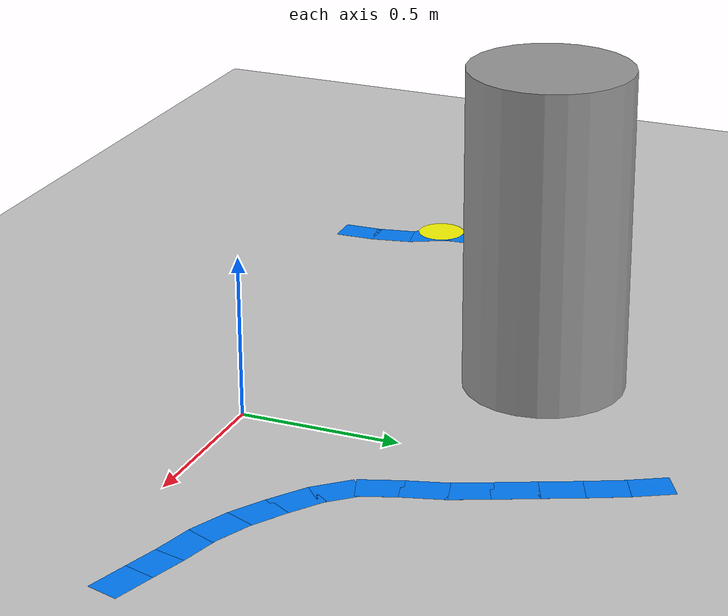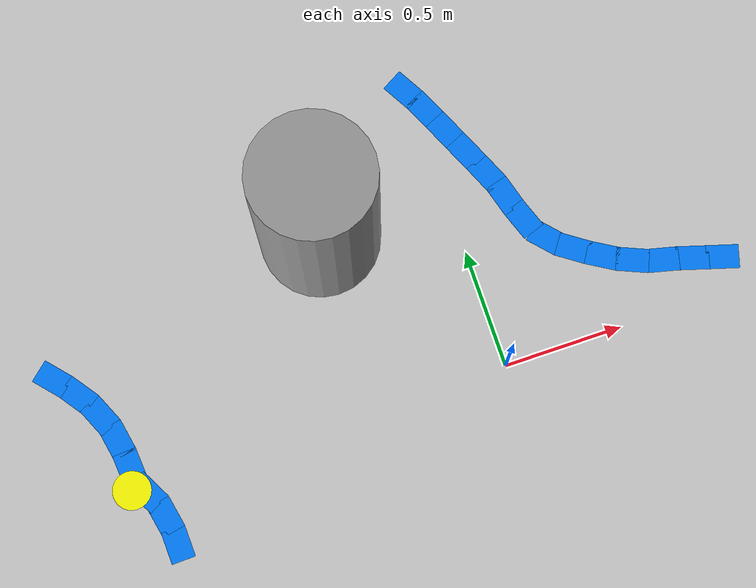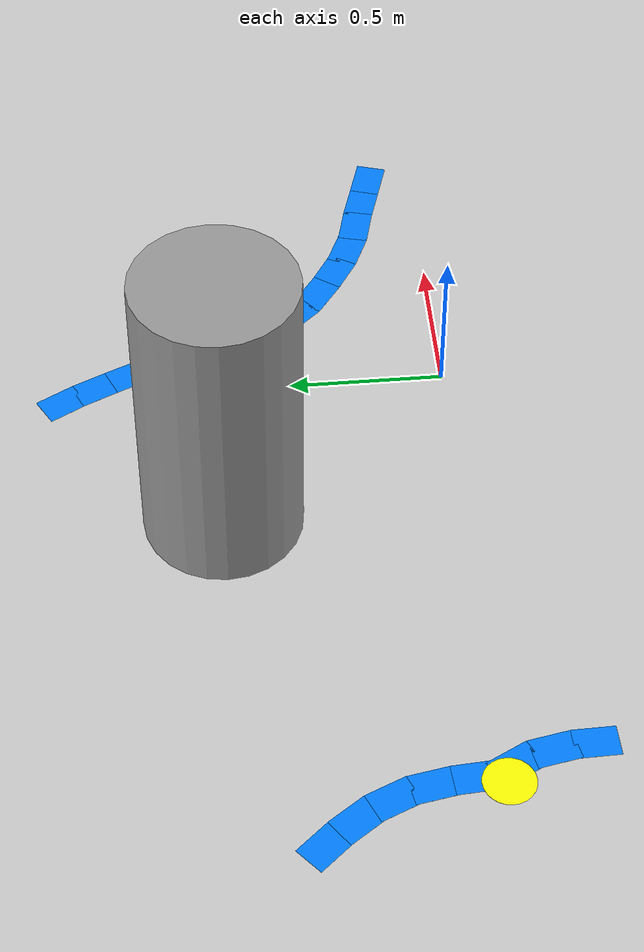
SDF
<sdf version="1.6">
 <world name="default">
  <include><uri>model://sun</uri></include>
  <include><uri>model://ground_plane</uri></include>
  <model name="obstacle_17">
   <static>true</static>
   <pose>-0.5499999999999998 0.75 0.5 0 0 0</pose>
   <link name="link">
    <visual name="visual">
     <geometry><cylinder><radius>0.25</radius><length>1.0</length></cylinder></geometry>
     <material>
      <script><uri>file://media/materials/scripts/gazebo.material</uri><name>Gazebo/Grey</name></script>
     </material>
    </visual>
    <collision name="collision">
     <geometry><cylinder><radius>0.25</radius><length>1.0</length></cylinder></geometry>
    </collision>
   </link>
  </model>
  <model name="yellow_dot_marker_1">
   <static>true</static>
   <pose>-1.6 0.0 0.00015 0 0 0</pose>
   <link name="link">
    <visual name="visual">
     <geometry><cylinder><radius>0.08</radius><length>0.0001</length></cylinder></geometry>
     <material><ambient>1 1 0 1</ambient><diffuse>1 1 0 1</diffuse></material>
    </visual>
   </link>
  </model>
  <model name="painted_floor_segment_47">
   <static>true</static>
   <pose>-1.487717247009277 -0.26712265014648384 0.0001 0 0 1.6015546556333662</pose>
   <link name="link">
    <visual name="visual">
     <geometry><box><size>0.1347397115117593 0.1 0.0001</size></box></geometry>
     <material><ambient>0 0.5 1 1.0</ambient><diffuse>0 0.5 1 1.0</diffuse></material>
    </visual>
   </link>
  </model>
  <model name="painted_floor_segment_48">
   <static>true</static>
   <pose>-1.5018064498901365 -0.1449600219726559 0.0001 0 0 1.768451265345716</pose>
   <link name="link">
    <visual name="visual">
     <geometry><box><size>0.1367442436472601 0.1 0.0001</size></box></geometry>
     <material><ambient>0 0.5 1 1.0</ambient><diffuse>0 0.5 1 1.0</diffuse></material>
    </visual>
   </link>
  </model>
  <model name="painted_floor_segment_49">
   <static>true</static>
   <pose>-1.5444555282592771 -0.026333618164062322 0.0001 0 0 2.0564332196138073</pose>
   <link name="link">
    <visual name="visual">
     <geometry><box><size>0.1434865049321786 0.1 0.0001</size></box></geometry>
     <material><ambient>0 0.5 1 1.0</ambient><diffuse>0 0.5 1 1.0</diffuse></material>
    </visual>
   </link>
  </model>
  <model name="painted_floor_segment_50">
   <static>true</static>
   <pose>-1.5796058654785154 0.09241905212402379 0.0001 0 0 1.647715809810503</pose>
   <link name="link">
    <visual name="visual">
     <geometry><box><size>0.13475804729867824 0.1 0.0001</size></box></geometry>
     <material><ambient>0 0.5 1 1.0</ambient><diffuse>0 0.5 1 1.0</diffuse></material>
    </visual>
   </link>
  </model>
  <model name="painted_floor_segment_51">
   <static>true</static>
   <pose>-1.5958833694458006 0.21488056182861381 0.0001 0 0 1.757090134175228</pose>
   <link name="link">
    <visual name="visual">
     <geometry><box><size>0.13743368782012505 0.1 0.0001</size></box></geometry>
     <material><ambient>0 0.5 1 1.0</ambient><diffuse>0 0.5 1 1.0</diffuse></material>
    </visual>
   </link>
  </model>
  <model name="painted_floor_segment_52">
   <static>true</static>
   <pose>-1.6326030731201169 0.33318176269531286 0.0001 0 0 1.986888610771055</pose>
   <link name="link">
    <visual name="visual">
     <geometry><box><size>0.1368867167070153 0.1 0.0001</size></box></geometry>
     <material><ambient>0 0.5 1 1.0</ambient><diffuse>0 0.5 1 1.0</diffuse></material>
    </visual>
   </link>
  </model>
  <model name="painted_floor_segment_53">
   <static>true</static>
   <pose>-1.6941318511962888 0.440851402282715 0.0001 0 0 2.1926659216044437</pose>
   <link name="link">
    <visual name="visual">
     <geometry><box><size>0.13738628304145326 0.1 0.0001</size></box></geometry>
     <material><ambient>0 0.5 1 1.0</ambient><diffuse>0 0.5 1 1.0</diffuse></material>
    </visual>
   </link>
  </model>
  <model name="painted_floor_segment_54">
   <static>true</static>
   <pose>-1.771834564208984 0.5384740829467778 0.0001 0 0 2.2934321959818234</pose>
   <link name="link">
    <visual name="visual">
     <geometry><box><size>0.1374595404934196 0.1 0.0001</size></box></geometry>
     <material><ambient>0 0.5 1 1.0</ambient><diffuse>0 0.5 1 1.0</diffuse></material>
    </visual>
   </link>
  </model>
  <model name="painted_floor_segment_199">
   <static>true</static>
   <pose>1.0015056610107425 0.14344844818115288 0.0001 0 0 2.857454128069355</pose>
   <link name="link">
    <visual name="visual">
     <geometry><box><size>0.1363567875674779 0.1 0.0001</size></box></geometry>
     <material><ambient>0 0.5 1 1.0</ambient><diffuse>0 0.5 1 1.0</diffuse></material>
    </visual>
   </link>
  </model>
  <model name="painted_floor_segment_200">
   <static>true</static>
   <pose>0.8822828292846685 0.1785896301269534 0.0001 0 0 2.8524739556626515</pose>
   <link name="link">
    <visual name="visual">
     <geometry><box><size>0.13709075254626807 0.1 0.0001</size></box></geometry>
     <material><ambient>0 0.5 1 1.0</ambient><diffuse>0 0.5 1 1.0</diffuse></material>
    </visual>
   </link>
  </model>
  <model name="painted_floor_segment_201">
   <static>true</static>
   <pose>0.7618185043334966 0.21097373962402344 0.0001 0 0 2.9054075847928127</pose>
   <link name="link">
    <visual name="visual">
     <geometry><box><size>0.13743618497774499 0.1 0.0001</size></box></geometry>
     <material><ambient>0 0.5 1 1.0</ambient><diffuse>0 0.5 1 1.0</diffuse></material>
    </visual>
   </link>
  </model>
  <model name="painted_floor_segment_202">
   <static>true</static>
   <pose>0.6436151504516605 0.24992160797119167 0.0001 0 0 2.7410994175869527</pose>
   <link name="link">
    <visual name="visual">
     <geometry><box><size>0.13729071284340474 0.1 0.0001</size></box></geometry>
     <material><ambient>0 0.5 1 1.0</ambient><diffuse>0 0.5 1 1.0</diffuse></material>
    </visual>
   </link>
  </model>
  <model name="painted_floor_segment_203">
   <static>true</static>
   <pose>0.5327476501464847 0.3065156936645512 0.0001 0 0 2.598099250155734</pose>
   <link name="link">
    <visual name="visual">
     <geometry><box><size>0.13725990719335388 0.1 0.0001</size></box></geometry>
     <material><ambient>0 0.5 1 1.0</ambient><diffuse>0 0.5 1 1.0</diffuse></material>
    </visual>
   </link>
  </model>
  <model name="painted_floor_segment_204">
   <static>true</static>
   <pose>0.42819709777832093 0.3744260787963869 0.0001 0 0 2.5329504252256347</pose>
   <link name="link">
    <visual name="visual">
     <geometry><box><size>0.13715993267848003 0.1 0.0001</size></box></geometry>
     <material><ambient>0 0.5 1 1.0</ambient><diffuse>0 0.5 1 1.0</diffuse></material>
    </visual>
   </link>
  </model>
  <model name="painted_floor_segment_205">
   <static>true</static>
   <pose>0.3361993789672857 0.4550514221191406 0.0001 0 0 2.308098466820891</pose>
   <link name="link">
    <visual name="visual">
     <geometry><box><size>0.13367015345441421 0.1 0.0001</size></box></geometry>
     <material><ambient>0 0.5 1 1.0</ambient><diffuse>0 0.5 1 1.0</diffuse></material>
    </visual>
   </link>
  </model>
  <model name="painted_floor_segment_206">
   <static>true</static>
   <pose>0.27442798614502006 0.5585460662841797 0.0001 0 0 1.9141993276189713</pose>
   <link name="link">
    <visual name="visual">
     <geometry><box><size>0.13671648787230492 0.1 0.0001</size></box></geometry>
     <material><ambient>0 0.5 1 1.0</ambient><diffuse>0 0.5 1 1.0</diffuse></material>
    </visual>
   </link>
  </model>
  <model name="painted_floor_segment_207">
   <static>true</static>
   <pose>0.23633041381835973 0.6771053314208988 0.0001 0 0 1.8493854519910848</pose>
   <link name="link">
    <visual name="visual">
     <geometry><box><size>0.13739346573222783 0.1 0.0001</size></box></geometry>
     <material><ambient>0 0.5 1 1.0</ambient><diffuse>0 0.5 1 1.0</diffuse></material>
    </visual>
   </link>
  </model>
  <model name="painted_floor_segment_208">
   <static>true</static>
   <pose>0.1942216873168947 0.7944501876831058 0.0001 0 0 1.9812324167647852</pose>
   <link name="link">
    <visual name="visual">
     <geometry><box><size>0.13748070558143974 0.1 0.0001</size></box></geometry>
     <material><ambient>0 0.5 1 1.0</ambient><diffuse>0 0.5 1 1.0</diffuse></material>
    </visual>
   </link>
  </model>
  <model name="painted_floor_segment_209">
   <static>true</static>
   <pose>0.14343147277832058 0.9086511611938479 0.0001 0 0 1.9973083954494173</pose>
   <link name="link">
    <visual name="visual">
     <geometry><box><size>0.1374974482674287 0.1 0.0001</size></box></geometry>
     <material><ambient>0 0.5 1 1.0</ambient><diffuse>0 0.5 1 1.0</diffuse></material>
    </visual>
   </link>
  </model>
  <model name="painted_floor_segment_210">
   <static>true</static>
   <pose>0.092081642150879 1.0226146697998053 0.0001 0 0 1.9909588342081692</pose>
   <link name="link">
    <visual name="visual">
     <geometry><box><size>0.1374994178862448 0.1 0.0001</size></box></geometry>
     <material><ambient>0 0.5 1 1.0</ambient><diffuse>0 0.5 1 1.0</diffuse></material>
    </visual>
   </link>
  </model>
  <model name="painted_floor_segment_211">
   <static>true</static>
   <pose>0.03987464904785165 1.1361759185791023 0.0001 0 0 2.012458924735598</pose>
   <link name="link">
    <visual name="visual">
     <geometry><box><size>0.13748767039197352 0.1 0.0001</size></box></geometry>
     <material><ambient>0 0.5 1 1.0</ambient><diffuse>0 0.5 1 1.0</diffuse></material>
    </visual>
   </link>
  </model>
  <model name="painted_floor_segment_212">
   <static>true</static>
   <pose>-0.017744064331054243 1.246773529052735 0.0001 0 0 2.0898254919254464</pose>
   <link name="link">
    <visual name="visual">
     <geometry><box><size>0.1370723501929551 0.1 0.0001</size></box></geometry>
     <material><ambient>0 0.5 1 1.0</ambient><diffuse>0 0.5 1 1.0</diffuse></material>
    </visual>
   </link>
  </model>
 </world>
</sdf>
